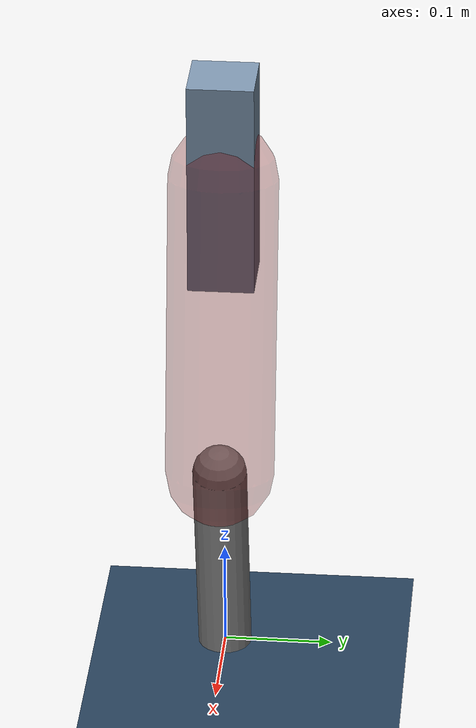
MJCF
<mujoco model="Hopper2D">
	<compiler inertiafromgeom="true" angle="radian" />
	<option timestep="0.001" integrator="implicit" cone="elliptic" solver="Newton" tolerance="1e-10" />

	<default>
		<geom contype="1" conaffinity="1" condim="3" friction="2 0.005 0.0001" solref="0.005 1" />
		<joint limited="true" damping="0.1" />
	</default>

	<asset>
		<texture name="skybox" type="skybox" builtin="gradient" rgb1=".4 .6 .8" rgb2="0 0 0" width="800" height="800" />
		<texture name="grid" type="2d" builtin="checker" rgb1=".1 .2 .3" rgb2=".2 .3 .4" width="300" height="300" mark="edge" markrgb=".2 .3 .4" />
		<material name="ground" texture="grid" texrepeat="1 1" texuniform="true" reflectance="0.1" />
		<material name="leg" rgba="0.5 0.6 0.7 1" />
	</asset>

	<worldbody>

		<geom name="floor" type="plane" size="5 5 0.25" material="ground" />

		<light directional="false" diffuse="0.8 0.8 0.8" specular="0.3 0.3 0.3" pos="0 0 2" dir="0 0 -1" />
		<light mode="targetbodycom" target="base" directional="false" diffuse="0.8 0.8 0.8" specular="0.3 0.3 0.3" pos="0 0 2" dir="0 0 -1" />

		<camera name="fixed" pos="0 -2 1" xyaxes="1 0 0 0 0 1" />
		<camera name="tracking" mode="trackcom" pos="0 -3 1" />

		<body name="root" pos="0 0 0.48639305614481626">
			<joint name="slide_x" type="slide" axis="1 0 0" range="-100 100" />
			<joint name="slide_z" type="slide" axis="0 0 1" range="0 10" />

			<body name="base" pos="0 0 0">
				<geom name="torso" type="box" size="0.03 0.03 0.1" mass="2.7969999999999997" material="leg" />

				<body name="link1" pos="0 0 0" euler="0 1.39466712407598 0">
					<joint type="hinge" axis="0 -1 0" pos="0 0 0" name="hinge1" limited="true" range="-3.14 3.14" stiffness="0" damping="0.1" />
					<geom name="thigh" type="capsule" fromto="0 0 0 0.28039807058573857 0 0" size="0.05" rgba="0.5 0 0 0.3" mass="0.9361747905814941" />

					<body name="link2" pos="0.28039807058573857 0 0" euler="0 0.4056030665742293 0">
						<joint type="hinge" axis="0 -1 0" pos="0 0 0" name="hinge2" limited="true" range="-3.14 3.14" stiffness="0" damping="0.1" />
						<geom name="shank" type="capsule" fromto="0 0 0 0.2159949855590777 0 0" size="0.025" mass="0.4142959884472622" />

					</body>
				</body>
			</body>
		</body>
	</worldbody>

	<actuator>
		<motor name="torque1" joint="hinge1" ctrlrange="-106.52999230990207 106.52999230990207" ctrllimited="true" gear="1" />
		<motor name="torque2" joint="hinge2" ctrlrange="-98.61898991263217 98.61898991263217" ctrllimited="true" gear="1" />
	</actuator>
</mujoco>
